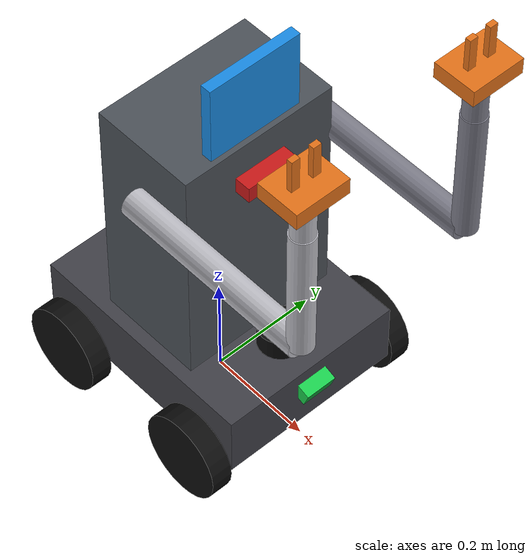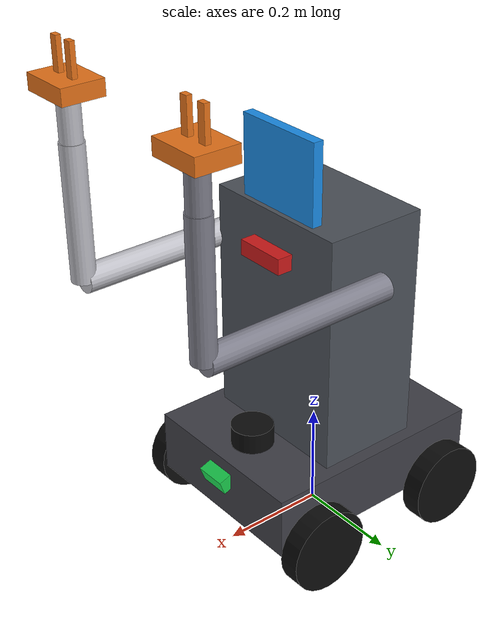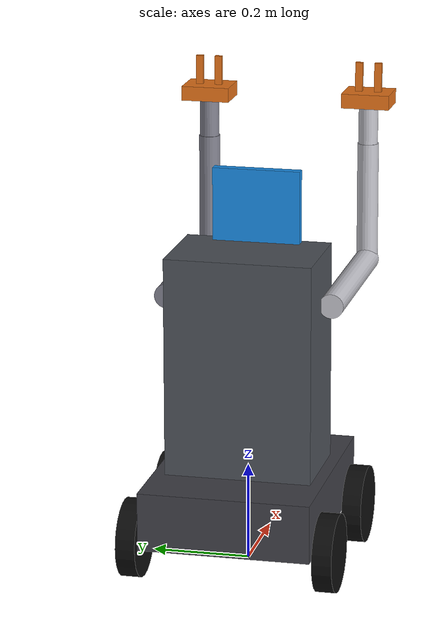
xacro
<?xml version="1.0"?>
<!--
  TidyBot top-level xacro.
  Step 1: base + 4 wheels only. Torso, arms, face, sensors, controllers
  will be included as separate xacros once base stability is verified.
-->
<robot xmlns:xacro="http://www.ros.org/wiki/xacro" name="tidybot">

  <xacro:include filename="$(find tidybot_description)/urdf/inertials.xacro"/>
  <xacro:include filename="$(find tidybot_description)/urdf/base.xacro"/>
  <xacro:include filename="$(find tidybot_description)/urdf/arm.xacro"/>
  <xacro:include filename="$(find tidybot_description)/urdf/torso.xacro"/>
  <xacro:include filename="$(find tidybot_description)/urdf/sensors.xacro"/>
  <xacro:include filename="$(find tidybot_description)/urdf/ros2_control.xacro"/>

</robot>

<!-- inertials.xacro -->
<robot xmlns:xacro="http://www.ros.org/wiki/xacro">

  <xacro:macro name="inertial_box" params="mass l w h *origin">
    <inertial>
      <xacro:insert_block name="origin"/>
      <mass value="${mass}"/>
      <inertia
        ixx="${mass/12.0 * (w*w + h*h)}" ixy="0" ixz="0"
        iyy="${mass/12.0 * (l*l + h*h)}" iyz="0"
        izz="${mass/12.0 * (l*l + w*w)}"/>
    </inertial>
  </xacro:macro>

  <!-- Cylinder whose symmetry (rotation) axis is Y. Used for wheels. -->
  <xacro:macro name="inertial_cylinder_y" params="mass r h *origin">
    <inertial>
      <xacro:insert_block name="origin"/>
      <mass value="${mass}"/>
      <inertia
        ixx="${mass/12.0 * (3*r*r + h*h)}" ixy="0" ixz="0"
        iyy="${0.5 * mass * r * r}"        iyz="0"
        izz="${mass/12.0 * (3*r*r + h*h)}"/>
    </inertial>
  </xacro:macro>

  <!-- Cylinder with symmetry axis along Z (vertical). -->
  <xacro:macro name="inertial_cylinder_z" params="mass r h *origin">
    <inertial>
      <xacro:insert_block name="origin"/>
      <mass value="${mass}"/>
      <inertia
        ixx="${mass/12.0 * (3*r*r + h*h)}" ixy="0" ixz="0"
        iyy="${mass/12.0 * (3*r*r + h*h)}" iyz="0"
        izz="${0.5 * mass * r * r}"/>
    </inertial>
  </xacro:macro>

</robot>

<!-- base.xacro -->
<robot xmlns:xacro="http://www.ros.org/wiki/xacro">

  <!-- ===== Dimensions ===== -->
  <xacro:property name="chassis_l" value="0.45"/>
  <xacro:property name="chassis_w" value="0.35"/>
  <xacro:property name="chassis_h" value="0.12"/>
  <xacro:property name="chassis_density" value="700"/>
  <xacro:property name="chassis_mass"
                  value="${chassis_density * chassis_l * chassis_w * chassis_h}"/>

  <xacro:property name="wheel_r" value="0.08"/>
  <xacro:property name="wheel_h" value="0.04"/>
  <xacro:property name="wheel_density" value="1100"/>
  <xacro:property name="wheel_mass"
                  value="${wheel_density * pi * wheel_r * wheel_r * wheel_h}"/>

  <!-- Wheel placement: at corners, slightly outside chassis sides. -->
  <xacro:property name="wheel_x" value="0.15"/>
  <xacro:property name="wheel_y"
                  value="${chassis_w/2 + wheel_h/2 + 0.005}"/>

  <!-- chassis_center_z chosen so wheel axles sit at z = wheel_r. -->
  <xacro:property name="chassis_center_z" value="0.14"/>

  <!-- ===== Materials ===== -->
  <material name="chassis_grey"><color rgba="0.25 0.25 0.28 1.0"/></material>
  <material name="wheel_black">  <color rgba="0.05 0.05 0.05 1.0"/></material>

  <!-- ===== base_footprint → base_link ===== -->
  <link name="base_footprint"/>

  <joint name="base_footprint_joint" type="fixed">
    <parent link="base_footprint"/>
    <child  link="base_link"/>
    <origin xyz="0 0 ${chassis_center_z}" rpy="0 0 0"/>
  </joint>

  <link name="base_link">
    <visual>
      <origin xyz="0 0 0" rpy="0 0 0"/>
      <geometry><box size="${chassis_l} ${chassis_w} ${chassis_h}"/></geometry>
      <material name="chassis_grey"/>
    </visual>
    <collision>
      <origin xyz="0 0 0" rpy="0 0 0"/>
      <geometry><box size="${chassis_l} ${chassis_w} ${chassis_h}"/></geometry>
    </collision>
    <!-- CoM offset 2 cm below center to simulate battery low in chassis -->
    <xacro:inertial_box mass="${chassis_mass}"
                        l="${chassis_l}" w="${chassis_w}" h="${chassis_h}">
      <origin xyz="0 0 -0.02" rpy="0 0 0"/>
    </xacro:inertial_box>
  </link>

  <gazebo reference="base_link">
    <material>Gazebo/DarkGrey</material>
    <mu1>0.3</mu1>
    <mu2>0.3</mu2>
  </gazebo>

  <!-- ===== Wheel macro =====
       side: "left" or "right"  (sign of Y)
       end : "front" or "rear"  (sign of X)
  -->
  <xacro:macro name="wheel" params="name x y">
    <link name="${name}_link">
      <visual>
        <origin xyz="0 0 0" rpy="${pi/2} 0 0"/>
        <geometry><cylinder radius="${wheel_r}" length="${wheel_h}"/></geometry>
        <material name="wheel_black"/>
      </visual>
      <collision>
        <origin xyz="0 0 0" rpy="${pi/2} 0 0"/>
        <geometry><cylinder radius="${wheel_r}" length="${wheel_h}"/></geometry>
      </collision>
      <xacro:inertial_cylinder_y mass="${wheel_mass}"
                                 r="${wheel_r}" h="${wheel_h}">
        <origin xyz="0 0 0" rpy="0 0 0"/>
      </xacro:inertial_cylinder_y>
    </link>

    <joint name="${name}_joint" type="continuous">
      <parent link="base_link"/>
      <child  link="${name}_link"/>
      <!-- Wheel center placed so z_world = wheel_r. Since base_link is
           at z=chassis_center_z, the wheel must be at z=wheel_r-chassis_center_z
           in base_link frame. -->
      <origin xyz="${x} ${y} ${wheel_r - chassis_center_z}" rpy="0 0 0"/>
      <axis xyz="0 1 0"/>
      <dynamics damping="0.15" friction="0.05"/>
      <limit effort="20.0" velocity="12.0"/>
    </joint>

    <gazebo reference="${name}_link">
      <material>Gazebo/Black</material>
      <!-- High surface friction so wheels grip, low rolling resistance via
           soft contact constants. kp/kd chosen for stable contact at 1 kHz. -->
      <mu1>1.0</mu1>
      <mu2>1.0</mu2>
      <kp>1.0e6</kp>
      <kd>100.0</kd>
      <minDepth>0.001</minDepth>
      <maxVel>1.0</maxVel>
    </gazebo>
  </xacro:macro>

  <xacro:wheel name="wheel_fl" x="${ wheel_x}" y="${ wheel_y}"/>
  <xacro:wheel name="wheel_fr" x="${ wheel_x}" y="${-wheel_y}"/>
  <xacro:wheel name="wheel_rl" x="${-wheel_x}" y="${ wheel_y}"/>
  <xacro:wheel name="wheel_rr" x="${-wheel_x}" y="${-wheel_y}"/>

</robot>

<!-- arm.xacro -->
<robot xmlns:xacro="http://www.ros.org/wiki/xacro">

  <!-- ===== Arm link dimensions ===== -->
  <xacro:property name="upper_r"  value="0.025"/>
  <xacro:property name="upper_l"  value="0.375"/>  <!-- 1.5x longer -->

  <xacro:property name="fore_r"   value="0.022"/>
  <xacro:property name="fore_l"   value="0.25"/>
  <xacro:property name="wrist_r"  value="0.02"/>
  <xacro:property name="wrist_l"  value="0.08"/>
  <xacro:property name="arm_density" value="500"/>

  <!-- ===== Gripper dimensions ===== -->
  <xacro:property name="grip_x"   value="0.08"/>
  <xacro:property name="grip_y"   value="0.10"/>
  <xacro:property name="grip_z"   value="0.03"/>
  <xacro:property name="grip_density" value="500"/>

  <xacro:property name="finger_x" value="0.01"/>
  <xacro:property name="finger_y" value="0.015"/>
  <xacro:property name="finger_z" value="0.06"/>
  <xacro:property name="finger_density" value="700"/>
  <xacro:property name="finger_travel" value="0.025"/>
  <xacro:property name="finger_y0"     value="0.020"/>  <!-- closed offset -->

  <!-- ===== Materials ===== -->
  <material name="arm_silver"><color rgba="0.75 0.75 0.78 1.0"/></material>
  <material name="arm_cosmetic"><color rgba="0.50 0.50 0.55 1.0"/></material>
  <material name="gripper_orange"><color rgba="0.90 0.45 0.10 1.0"/></material>

  <xacro:macro name="arm"
               params="prefix mount_xyz
                       home_shoulder:=-1.5708
                       home_elbow:=-1.5708
                       home_wrist:=0.0
                       functional:=true">

    <!-- Joint type chosen at expand time by the functional flag. -->
    <xacro:property name="jtype" value="${'revolute' if functional else 'fixed'}"/>
    <xacro:property name="mat"   value="${'arm_silver' if functional else 'arm_cosmetic'}"/>

    <!-- ====== SHOULDER joint + UPPER ARM link ====== -->
    <joint name="${prefix}_shoulder_joint" type="${jtype}">
      <parent link="torso_link"/>
      <child  link="${prefix}_upper_arm_link"/>
      <origin xyz="${mount_xyz}" rpy="0 ${home_shoulder} 0"/>
      <axis xyz="0 1 0"/>
      <xacro:if value="${functional}">
        <!-- limits span a full forward/up/backward arc around the home -->
        <limit lower="-2.5" upper="2.5" effort="15.0" velocity="2.0"/>
        <dynamics damping="0.8" friction="4.0"/>
      </xacro:if>
    </joint>

    <link name="${prefix}_upper_arm_link">
      <visual>
        <origin xyz="0 0 ${-upper_l/2}" rpy="0 0 0"/>
        <geometry><cylinder radius="${upper_r}" length="${upper_l}"/></geometry>
        <material name="${mat}"/>
      </visual>
      <collision>
        <origin xyz="0 0 ${-upper_l/2}" rpy="0 0 0"/>
        <geometry><cylinder radius="${upper_r}" length="${upper_l}"/></geometry>
      </collision>
      <xacro:inertial_cylinder_z
          mass="${arm_density * pi * upper_r * upper_r * upper_l}"
          r="${upper_r}" h="${upper_l}">
        <origin xyz="0 0 ${-upper_l/2}" rpy="0 0 0"/>
      </xacro:inertial_cylinder_z>
    </link>

    <!-- ====== ELBOW joint + FOREARM link ====== -->
    <joint name="${prefix}_elbow_joint" type="${jtype}">
      <parent link="${prefix}_upper_arm_link"/>
      <child  link="${prefix}_forearm_link"/>
      <origin xyz="0 0 ${-upper_l}" rpy="0 ${home_elbow} 0"/>
      <axis xyz="0 1 0"/>
      <xacro:if value="${functional}">
        <limit lower="-2.8" upper="2.8" effort="12.0" velocity="2.0"/>
        <dynamics damping="0.5" friction="2.0"/>
      </xacro:if>
    </joint>

    <link name="${prefix}_forearm_link">
      <visual>
        <origin xyz="0 0 ${-fore_l/2}" rpy="0 0 0"/>
        <geometry><cylinder radius="${fore_r}" length="${fore_l}"/></geometry>
        <material name="${mat}"/>
      </visual>
      <collision>
        <origin xyz="0 0 ${-fore_l/2}" rpy="0 0 0"/>
        <geometry><cylinder radius="${fore_r}" length="${fore_l}"/></geometry>
      </collision>
      <xacro:inertial_cylinder_z
          mass="${arm_density * pi * fore_r * fore_r * fore_l}"
          r="${fore_r}" h="${fore_l}">
        <origin xyz="0 0 ${-fore_l/2}" rpy="0 0 0"/>
      </xacro:inertial_cylinder_z>
    </link>

    <!-- ====== WRIST joint + WRIST link ====== -->
    <joint name="${prefix}_wrist_joint" type="${jtype}">
      <parent link="${prefix}_forearm_link"/>
      <child  link="${prefix}_wrist_link"/>
      <origin xyz="0 0 ${-fore_l}" rpy="0 ${home_wrist} 0"/>
      <axis xyz="0 1 0"/>
      <xacro:if value="${functional}">
        <limit lower="-2.0" upper="2.0" effort="8.0" velocity="2.5"/>
        <dynamics damping="0.3" friction="1.0"/>
      </xacro:if>
    </joint>

    <link name="${prefix}_wrist_link">
      <visual>
        <origin xyz="0 0 ${-wrist_l/2}" rpy="0 0 0"/>
        <geometry><cylinder radius="${wrist_r}" length="${wrist_l}"/></geometry>
        <material name="${mat}"/>
      </visual>
      <collision>
        <origin xyz="0 0 ${-wrist_l/2}" rpy="0 0 0"/>
        <geometry><cylinder radius="${wrist_r}" length="${wrist_l}"/></geometry>
      </collision>
      <xacro:inertial_cylinder_z
          mass="${arm_density * pi * wrist_r * wrist_r * wrist_l}"
          r="${wrist_r}" h="${wrist_l}">
        <origin xyz="0 0 ${-wrist_l/2}" rpy="0 0 0"/>
      </xacro:inertial_cylinder_z>
    </link>

    <!-- ====== GRIPPER BASE (fixed to wrist) ====== -->
    <joint name="${prefix}_gripper_fix" type="fixed">
      <parent link="${prefix}_wrist_link"/>
      <child  link="${prefix}_gripper_base_link"/>
      <origin xyz="0 0 ${-wrist_l - grip_z/2}" rpy="0 0 0"/>
    </joint>

    <link name="${prefix}_gripper_base_link">
      <visual>
        <origin xyz="0 0 0" rpy="0 0 0"/>
        <geometry><box size="${grip_x} ${grip_y} ${grip_z}"/></geometry>
        <material name="gripper_orange"/>
      </visual>
      <collision>
        <origin xyz="0 0 0" rpy="0 0 0"/>
        <geometry><box size="${grip_x} ${grip_y} ${grip_z}"/></geometry>
      </collision>
      <xacro:inertial_box
          mass="${grip_density * grip_x * grip_y * grip_z}"
          l="${grip_x}" w="${grip_y}" h="${grip_z}">
        <origin xyz="0 0 0" rpy="0 0 0"/>
      </xacro:inertial_box>
    </link>

    <!-- ====== FINGERS (prismatic) ======
         Both functional even on cosmetic arm (fixed) — on cosmetic side
         the type collapses to fixed so they don't move.
    -->
    <xacro:property name="ftype" value="${'prismatic' if functional else 'fixed'}"/>

    <joint name="${prefix}_finger_left_joint" type="${ftype}">
      <parent link="${prefix}_gripper_base_link"/>
      <child  link="${prefix}_finger_left_link"/>
      <origin xyz="0 ${finger_y0} ${-grip_z/2 - finger_z/2}" rpy="0 0 0"/>
      <axis xyz="0 1 0"/>
      <xacro:if value="${functional}">
        <limit lower="0" upper="${finger_travel}" effort="30.0" velocity="0.1"/>
        <dynamics damping="10.0" friction="1.0"/>
      </xacro:if>
    </joint>

    <link name="${prefix}_finger_left_link">
      <visual>
        <origin xyz="0 0 0" rpy="0 0 0"/>
        <geometry><box size="${finger_x} ${finger_y} ${finger_z}"/></geometry>
        <material name="gripper_orange"/>
      </visual>
      <collision>
        <origin xyz="0 0 0" rpy="0 0 0"/>
        <geometry><box size="${finger_x} ${finger_y} ${finger_z}"/></geometry>
      </collision>
      <xacro:inertial_box
          mass="${finger_density * finger_x * finger_y * finger_z}"
          l="${finger_x}" w="${finger_y}" h="${finger_z}">
        <origin xyz="0 0 0" rpy="0 0 0"/>
      </xacro:inertial_box>
    </link>

    <joint name="${prefix}_finger_right_joint" type="${ftype}">
      <parent link="${prefix}_gripper_base_link"/>
      <child  link="${prefix}_finger_right_link"/>
      <origin xyz="0 ${-finger_y0} ${-grip_z/2 - finger_z/2}" rpy="0 0 0"/>
      <axis xyz="0 -1 0"/>
      <xacro:if value="${functional}">
        <limit lower="0" upper="${finger_travel}" effort="30.0" velocity="0.1"/>
        <dynamics damping="10.0" friction="1.0"/>
      </xacro:if>
    </joint>

    <link name="${prefix}_finger_right_link">
      <visual>
        <origin xyz="0 0 0" rpy="0 0 0"/>
        <geometry><box size="${finger_x} ${finger_y} ${finger_z}"/></geometry>
        <material name="gripper_orange"/>
      </visual>
      <collision>
        <origin xyz="0 0 0" rpy="0 0 0"/>
        <geometry><box size="${finger_x} ${finger_y} ${finger_z}"/></geometry>
      </collision>
      <xacro:inertial_box
          mass="${finger_density * finger_x * finger_y * finger_z}"
          l="${finger_x}" w="${finger_y}" h="${finger_z}">
        <origin xyz="0 0 0" rpy="0 0 0"/>
      </xacro:inertial_box>
    </link>

    <!-- ===== Gazebo surface tags =====
         Arm links: mild friction; finger pads: high friction to grip. -->
    <gazebo reference="${prefix}_upper_arm_link"><material>Gazebo/Grey</material></gazebo>
    <gazebo reference="${prefix}_forearm_link">  <material>Gazebo/Grey</material></gazebo>
    <gazebo reference="${prefix}_wrist_link">    <material>Gazebo/Grey</material></gazebo>
    <gazebo reference="${prefix}_gripper_base_link">
      <material>Gazebo/Orange</material>
    </gazebo>
    <gazebo reference="${prefix}_finger_left_link">
      <material>Gazebo/Orange</material>
      <mu1>1.5</mu1><mu2>1.5</mu2><kp>1e6</kp><kd>100</kd>
      <minDepth>0.0005</minDepth>
    </gazebo>
    <gazebo reference="${prefix}_finger_right_link">
      <material>Gazebo/Orange</material>
      <mu1>1.5</mu1><mu2>1.5</mu2><kp>1e6</kp><kd>100</kd>
      <minDepth>0.0005</minDepth>
    </gazebo>

  </xacro:macro>

</robot>

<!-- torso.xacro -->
<robot xmlns:xacro="http://www.ros.org/wiki/xacro">

  <!-- ===== Torso dimensions ===== -->
  <xacro:property name="torso_l" value="0.20"/>
  <xacro:property name="torso_w" value="0.30"/>
  <xacro:property name="torso_h" value="0.45"/>
  <xacro:property name="torso_density" value="300"/>
  <xacro:property name="torso_mass"
                  value="${torso_density * torso_l * torso_w * torso_h}"/>

  <!-- Face panel (visual dominant, small mass). Mounted on top of torso. -->
  <xacro:property name="face_l" value="0.02"/>
  <xacro:property name="face_w" value="0.18"/>
  <xacro:property name="face_h" value="0.15"/>
  <xacro:property name="face_mass" value="0.15"/>

  <!-- Shoulder mount in torso frame: upper third, just outside torso side. -->
  <xacro:property name="shoulder_z" value="0.12"/>
  <xacro:property name="shoulder_y" value="${torso_w/2 + 0.02}"/>

  <material name="torso_grey"><color rgba="0.30 0.32 0.35 1.0"/></material>
  <material name="face_blue"><color rgba="0.10 0.55 0.90 1.0"/></material>

  <!-- ===== Torso link fixed atop chassis ===== -->
  <joint name="torso_joint" type="fixed">
    <parent link="base_link"/>
    <child  link="torso_link"/>
    <!-- chassis top in base_link frame is +chassis_h/2 = 0.06.
         Torso bottom rests on that, torso center at 0.06 + torso_h/2. -->
    <origin xyz="0 0 ${chassis_h/2 + torso_h/2}" rpy="0 0 0"/>
  </joint>

  <link name="torso_link">
    <visual>
      <origin xyz="0 0 0" rpy="0 0 0"/>
      <geometry><box size="${torso_l} ${torso_w} ${torso_h}"/></geometry>
      <material name="torso_grey"/>
    </visual>
    <collision>
      <origin xyz="0 0 0" rpy="0 0 0"/>
      <geometry><box size="${torso_l} ${torso_w} ${torso_h}"/></geometry>
    </collision>
    <xacro:inertial_box mass="${torso_mass}"
                        l="${torso_l}" w="${torso_w}" h="${torso_h}">
      <!-- CoM offset 5 cm down in torso frame to keep CoG low. -->
      <origin xyz="0 0 -0.05" rpy="0 0 0"/>
    </xacro:inertial_box>
  </link>

  <gazebo reference="torso_link">
    <material>Gazebo/DarkGrey</material>
  </gazebo>

  <!-- ===== Face panel (visual dominant, tiny mass) ===== -->
  <joint name="face_joint" type="fixed">
    <parent link="torso_link"/>
    <child  link="face_link"/>
    <!-- Sits on top of torso, slightly forward, like a tablet-head. -->
    <origin xyz="${torso_l/2 - face_l/2 - 0.01} 0 ${torso_h/2 + face_h/2}"
            rpy="0 0 0"/>
  </joint>

  <link name="face_link">
    <visual>
      <origin xyz="0 0 0" rpy="0 0 0"/>
      <geometry><box size="${face_l} ${face_w} ${face_h}"/></geometry>
      <material name="face_blue"/>
    </visual>
    <!-- No collision: visual-only per spec. -->
    <xacro:inertial_box mass="${face_mass}"
                        l="${face_l}" w="${face_w}" h="${face_h}">
      <origin xyz="0 0 0" rpy="0 0 0"/>
    </xacro:inertial_box>
  </link>

  <gazebo reference="face_link">
    <material>Gazebo/Blue</material>
  </gazebo>

  <!-- ===== Arms =====
       Right arm: functional (real revolute + prismatic joints).
       Left  arm: cosmetic (all joints collapsed to fixed).
  -->
  <xacro:arm prefix="right"
             mount_xyz="0 ${-shoulder_y} ${shoulder_z}"
             functional="true"/>

  <xacro:arm prefix="left"
             mount_xyz="0 ${ shoulder_y} ${shoulder_z}"
             functional="false"/>

</robot>

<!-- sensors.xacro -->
<robot xmlns:xacro="http://www.ros.org/wiki/xacro">

  <xacro:property name="lidar_r"       value="0.040"/>
  <xacro:property name="lidar_h"       value="0.040"/>
  <xacro:property name="lidar_mass"    value="0.10"/>

  <material name="lidar_black"><color rgba="0.05 0.05 0.05 1.0"/></material>

  <joint name="lidar_joint" type="fixed">
    <parent link="base_link"/>
    <child  link="lidar_link"/>
    <!-- Top of chassis (base_link z = +0.06) + half lidar height.
         x=+0.15 puts it in front of torso (torso front face at +0.10). -->
    <origin xyz="0.15 0 ${0.06 + lidar_h/2}" rpy="0 0 0"/>
  </joint>

  <link name="lidar_link">
    <visual>
      <origin xyz="0 0 0" rpy="0 0 0"/>
      <geometry><cylinder radius="${lidar_r}" length="${lidar_h}"/></geometry>
      <material name="lidar_black"/>
    </visual>
    <collision>
      <origin xyz="0 0 0" rpy="0 0 0"/>
      <geometry><cylinder radius="${lidar_r}" length="${lidar_h}"/></geometry>
    </collision>
    <xacro:inertial_cylinder_z mass="${lidar_mass}" r="${lidar_r}" h="${lidar_h}">
      <origin xyz="0 0 0" rpy="0 0 0"/>
    </xacro:inertial_cylinder_z>
  </link>

  <gazebo reference="lidar_link">
    <material>Gazebo/Black</material>
    <sensor type="ray" name="lidar_sensor">
      <pose>0 0 0 0 0 0</pose>
      <visualize>true</visualize>
      <update_rate>10</update_rate>
      <ray>
        <scan>
          <horizontal>
            <samples>200</samples>
            <resolution>1</resolution>
            <min_angle>-1.7453</min_angle>
            <max_angle> 1.7453</max_angle>
          </horizontal>
        </scan>
        <range>
          <min>0.12</min>
          <max>10.0</max>
          <resolution>0.01</resolution>
        </range>
        <noise>
          <type>gaussian</type>
          <mean>0.0</mean>
          <stddev>0.01</stddev>
        </noise>
      </ray>
      <plugin name="lidar_plugin" filename="libgazebo_ros_ray_sensor.so">
        <ros>
          <remapping>~/out:=scan</remapping>
        </ros>
        <output_type>sensor_msgs/LaserScan</output_type>
        <frame_name>lidar_link</frame_name>
      </plugin>
    </sensor>
  </gazebo>

  <!-- ======================================================
       IMU
       ====================================================== -->
  <xacro:property name="imu_s" value="0.03"/>
  <xacro:property name="imu_mass" value="0.02"/>

  <joint name="imu_joint" type="fixed">
    <parent link="base_link"/>
    <child  link="imu_link"/>
    <origin xyz="0 0 0" rpy="0 0 0"/>
  </joint>

  <link name="imu_link">
    <visual>
      <origin xyz="0 0 0" rpy="0 0 0"/>
      <geometry><box size="${imu_s} ${imu_s} ${imu_s}"/></geometry>
      <material name="face_blue"/>
    </visual>
    <xacro:inertial_box mass="${imu_mass}" l="${imu_s}" w="${imu_s}" h="${imu_s}">
      <origin xyz="0 0 0" rpy="0 0 0"/>
    </xacro:inertial_box>
  </link>

  <gazebo reference="imu_link">
    <gravity>true</gravity>
    <sensor name="imu_sensor" type="imu">
      <always_on>true</always_on>
      <update_rate>100</update_rate>
      <visualize>false</visualize>
      <imu>
        <angular_velocity>
          <x><noise type="gaussian"><mean>0.0</mean><stddev>2.0e-4</stddev></noise></x>
          <y><noise type="gaussian"><mean>0.0</mean><stddev>2.0e-4</stddev></noise></y>
          <z><noise type="gaussian"><mean>0.0</mean><stddev>2.0e-4</stddev></noise></z>
        </angular_velocity>
        <linear_acceleration>
          <x><noise type="gaussian"><mean>0.0</mean><stddev>1.7e-2</stddev></noise></x>
          <y><noise type="gaussian"><mean>0.0</mean><stddev>1.7e-2</stddev></noise></y>
          <z><noise type="gaussian"><mean>0.0</mean><stddev>1.7e-2</stddev></noise></z>
        </linear_acceleration>
      </imu>
      <plugin name="imu_plugin" filename="libgazebo_ros_imu_sensor.so">
        <ros>
          <remapping>~/out:=imu</remapping>
        </ros>
        <initial_orientation_as_reference>false</initial_orientation_as_reference>
        <frame_name>imu_link</frame_name>
      </plugin>
    </sensor>
  </gazebo>

  <xacro:property name="fcam_x" value="0.04"/>
  <xacro:property name="fcam_y" value="0.06"/>
  <xacro:property name="fcam_z" value="0.03"/>
  <xacro:property name="fcam_mass" value="0.05"/>
  <xacro:property name="fcam_pitch" value="0.35"/>  <!-- ~20 deg down -->

  <material name="fcam_green"><color rgba="0.10 0.80 0.30 1.0"/></material>

  <joint name="front_camera_joint" type="fixed">
    <parent link="base_link"/>
    <child  link="front_camera_link"/>
    <!-- front face of chassis: x=+chassis_l/2=+0.225; z=+0.02 above center -->
    <origin xyz="0.225 0 0.02" rpy="0 ${fcam_pitch} 0"/>
  </joint>

  <link name="front_camera_link">
    <visual>
      <origin xyz="0 0 0" rpy="0 0 0"/>
      <geometry><box size="${fcam_x} ${fcam_y} ${fcam_z}"/></geometry>
      <material name="fcam_green"/>
    </visual>
    <collision>
      <origin xyz="0 0 0" rpy="0 0 0"/>
      <geometry><box size="${fcam_x} ${fcam_y} ${fcam_z}"/></geometry>
    </collision>
    <xacro:inertial_box mass="${fcam_mass}" l="${fcam_x}" w="${fcam_y}" h="${fcam_z}">
      <origin xyz="0 0 0" rpy="0 0 0"/>
    </xacro:inertial_box>
  </link>

  <!-- Optical frame (z-forward, x-right, y-down) -->
  <joint name="front_camera_optical_joint" type="fixed">
    <parent link="front_camera_link"/>
    <child  link="front_camera_optical_frame"/>
    <origin xyz="0 0 0" rpy="${-pi/2} 0 ${-pi/2}"/>
  </joint>
  <link name="front_camera_optical_frame"/>

  <gazebo reference="front_camera_link">
    <material>Gazebo/Green</material>
    <sensor type="camera" name="front_camera">
      <update_rate>15.0</update_rate>
      <visualize>false</visualize>
      <camera name="head">
        <horizontal_fov>1.2</horizontal_fov>
        <image>
          <width>640</width>
          <height>480</height>
          <format>R8G8B8</format>
        </image>
        <clip><near>0.05</near><far>6.0</far></clip>
        <noise>
          <type>gaussian</type>
          <mean>0.0</mean>
          <stddev>0.007</stddev>
        </noise>
      </camera>
      <plugin name="front_camera_plugin" filename="libgazebo_ros_camera.so">
        <ros>
          <namespace>/front_camera</namespace>
          <remapping>image_raw:=image_raw</remapping>
          <remapping>camera_info:=camera_info</remapping>
        </ros>
        <camera_name>front_camera</camera_name>
        <frame_name>front_camera_optical_frame</frame_name>
      </plugin>
    </sensor>
  </gazebo>

  <xacro:property name="tcam_x" value="0.04"/>
  <xacro:property name="tcam_y" value="0.10"/>
  <xacro:property name="tcam_z" value="0.03"/>
  <xacro:property name="tcam_mass" value="0.08"/>

  <material name="tcam_red"><color rgba="0.80 0.10 0.10 1.0"/></material>

  <joint name="torso_camera_joint" type="fixed">
    <parent link="torso_link"/>
    <child  link="torso_camera_link"/>
    <!-- Upper-middle of torso front face. Torso half-length is 0.10, so
         +0.11 x puts camera just proud of the front. z=+0.15 is about
         two-thirds up the torso. -->
    <origin xyz="0.11 0 0.15" rpy="0 0 0"/>
  </joint>

  <link name="torso_camera_link">
    <visual>
      <origin xyz="0 0 0" rpy="0 0 0"/>
      <geometry><box size="${tcam_x} ${tcam_y} ${tcam_z}"/></geometry>
      <material name="tcam_red"/>
    </visual>
    <collision>
      <origin xyz="0 0 0" rpy="0 0 0"/>
      <geometry><box size="${tcam_x} ${tcam_y} ${tcam_z}"/></geometry>
    </collision>
    <xacro:inertial_box mass="${tcam_mass}" l="${tcam_x}" w="${tcam_y}" h="${tcam_z}">
      <origin xyz="0 0 0" rpy="0 0 0"/>
    </xacro:inertial_box>
  </link>

  <joint name="torso_camera_optical_joint" type="fixed">
    <parent link="torso_camera_link"/>
    <child  link="torso_camera_optical_frame"/>
    <origin xyz="0 0 0" rpy="${-pi/2} 0 ${-pi/2}"/>
  </joint>
  <link name="torso_camera_optical_frame"/>

  <gazebo reference="torso_camera_link">
    <material>Gazebo/Red</material>
    <sensor type="depth" name="torso_rgbd">
      <update_rate>15.0</update_rate>
      <visualize>false</visualize>
      <camera name="rgbd">
        <horizontal_fov>1.2</horizontal_fov>
        <image>
          <width>640</width>
          <height>480</height>
          <format>R8G8B8</format>
        </image>
        <clip><near>0.1</near><far>8.0</far></clip>
        <noise>
          <type>gaussian</type>
          <mean>0.0</mean>
          <stddev>0.007</stddev>
        </noise>
      </camera>
      <plugin name="torso_rgbd_plugin" filename="libgazebo_ros_camera.so">
        <ros>
          <namespace>/camera</namespace>
        </ros>
        <camera_name>rgbd</camera_name>
        <frame_name>torso_camera_optical_frame</frame_name>
        <min_depth>0.1</min_depth>
        <max_depth>8.0</max_depth>
      </plugin>
    </sensor>
  </gazebo>

</robot>
